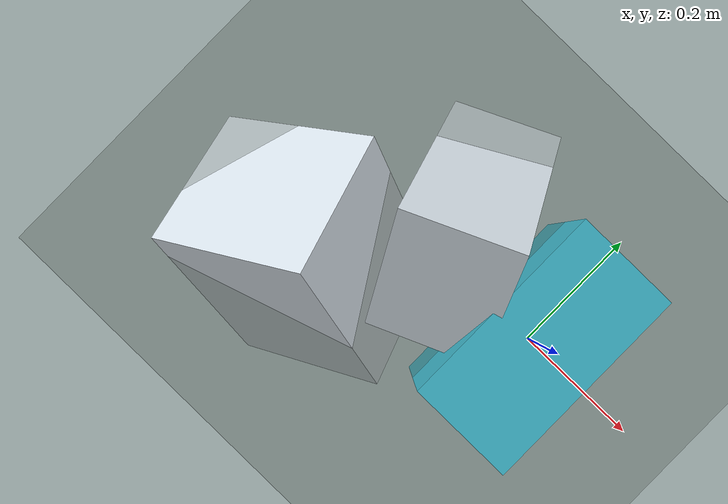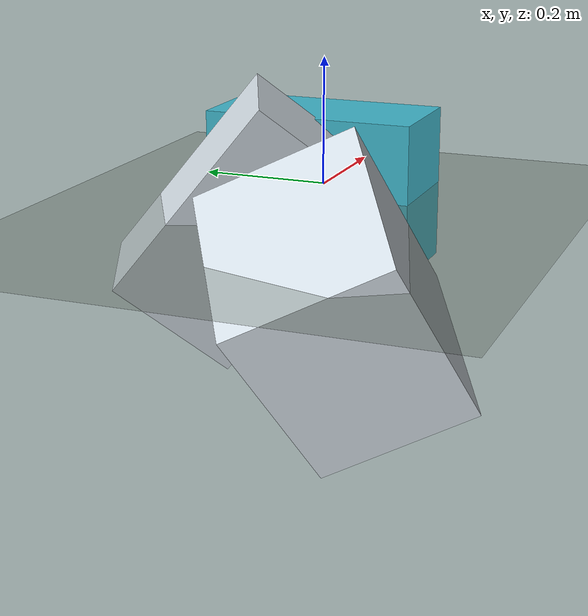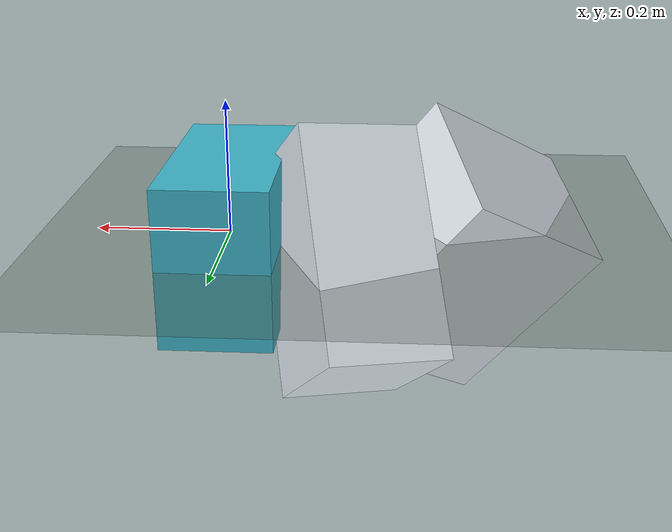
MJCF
<mujoco model="criatura">
  <compiler angle="degree" autolimits="true"/>
  <option timestep="0.002083" gravity="0 0 -9.81" integrator="implicitfast"/>
  <default>
    <geom type="box" density="300.0" rgba="0.85 0.89 0.92 1"/>
    <joint type="hinge"/>
    <motor ctrlrange="-1 1"/>
  </default>
  <worldbody>
    <geom name="suelo" type="plane" size="0 0 1" friction="1 0.005 0.0001" rgba="0.3 0.35 0.3 1"/>
    <body name="p0_n0" pos="0.00000 0.00000 0.00000" quat="1.000000 0.000000 0.000000 0.000000">
      <freejoint name="raiz"/>
      <geom name="g_p0_n0" size="0.08183 0.16396 0.11902" rgba="0.25 0.72 0.8 1"/>
      <body name="p1_n1" pos="-0.18146 0.06002 -0.02158" quat="0.140666 -0.161945 0.883845 -0.415699">
        <joint name="p1_n1_j0" axis="0.0000 0.0000 1.0000" pos="-0.10973 0 0" range="-27.18 27.18" damping="1.0851"/>
        <geom name="g_p1_n1" size="0.08973 0.17230 0.10496"/>
        <body name="p2_n2" pos="0.23008 -0.05231 0.12014" quat="0.955097 -0.218657 -0.187869 0.068436">
          <joint name="p2_n2_j0" axis="1.0000 0.0000 0.0000" pos="-0.15255 0 0" range="-25.10 25.10" damping="1.0851"/>
          <joint name="p2_n2_j1" axis="0.0000 1.0000 0.0000" pos="-0.15255 0 0" range="-25.10 25.10" damping="1.0851"/>
          <joint name="p2_n2_j2" axis="0.0000 0.0000 1.0000" pos="-0.15255 0 0" range="-25.10 25.10" damping="1.0851"/>
          <geom name="g_p2_n2" size="0.13255 0.11960 0.16759"/>
        </body>
      </body>
    </body>
  </worldbody>
  <actuator>
    <motor name="m_p1_n1_j0" joint="p1_n1_j0" gear="21.7016"/>
    <motor name="m_p2_n2_j0" joint="p2_n2_j0" gear="21.7016"/>
    <motor name="m_p2_n2_j1" joint="p2_n2_j1" gear="21.7016"/>
    <motor name="m_p2_n2_j2" joint="p2_n2_j2" gear="21.7016"/>
  </actuator>
</mujoco>
